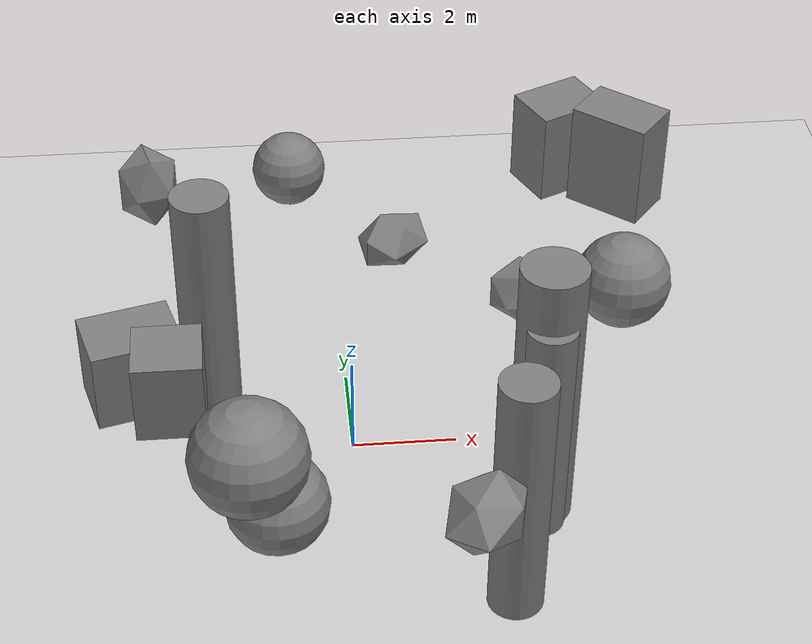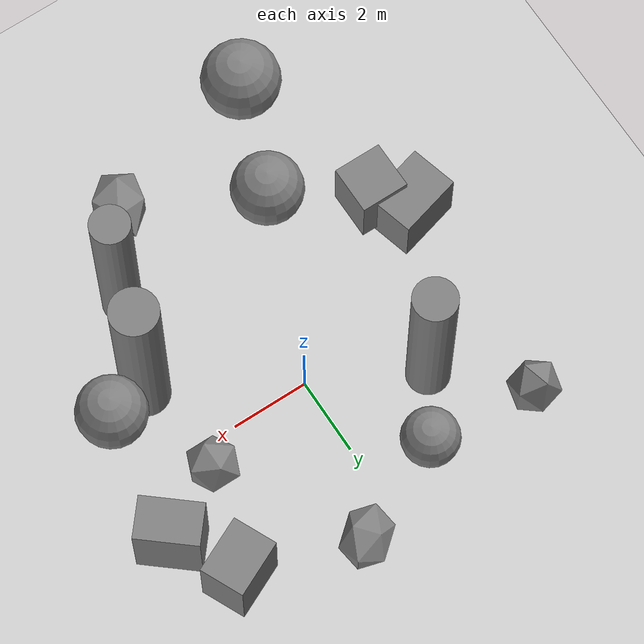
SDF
<?xml version="1.0"?>
<sdf version="1.6">
  <world name="uav6_knot_obstacles">
    <physics name="ode" type="ode">
      <max_step_size>0.001</max_step_size>
      <real_time_update_rate>1000</real_time_update_rate>
    </physics>
    <include>
      <uri>model://sun</uri>
    </include>
    <include>
      <uri>model://ground_plane</uri>
    </include>
    <model name="xgc2_obstacle_knotv2_cyl_01">
      <static>true</static>
      <pose relative_to="world">2.551648 -4.181376 2.5 0.0 0.0 0.0</pose>
      <link name="body">
        <collision name="collision">
          <geometry>
            <cylinder>
              <radius>0.5</radius>
              <length>5.0</length>
            </cylinder>
          </geometry>
        </collision>
        <visual name="visual">
          <geometry>
            <cylinder>
              <radius>0.5</radius>
              <length>5.0</length>
            </cylinder>
          </geometry>
          <material>
            <ambient>0.5 0.5 0.5 1</ambient>
            <diffuse>0.5 0.5 0.5 1</diffuse>
          </material>
        </visual>
      </link>
    </model>
    <model name="xgc2_obstacle_knotv2_sph_02">
      <static>true</static>
      <pose relative_to="world">4.788593 -0.604607 4.159518 0.0 0.0 0.0</pose>
      <link name="body">
        <collision name="collision">
          <geometry>
            <sphere>
              <radius>0.85</radius>
            </sphere>
          </geometry>
        </collision>
        <visual name="visual">
          <geometry>
            <sphere>
              <radius>0.85</radius>
            </sphere>
          </geometry>
          <material>
            <ambient>0.5 0.5 0.5 1</ambient>
            <diffuse>0.5 0.5 0.5 1</diffuse>
          </material>
        </visual>
      </link>
    </model>
    <model name="xgc2_obstacle_knotv2_box_03">
      <static>true</static>
      <pose relative_to="world">4.361661 4.038026 4.143696 0.0 0.0 0.43633306990197307</pose>
      <link name="body">
        <collision name="collision">
          <geometry>
            <box>
              <size>1.4 1.1 1.8</size>
            </box>
          </geometry>
        </collision>
        <visual name="visual">
          <geometry>
            <box>
              <size>1.4 1.1 1.8</size>
            </box>
          </geometry>
          <material>
            <ambient>0.5 0.5 0.5 1</ambient>
            <diffuse>0.5 0.5 0.5 1</diffuse>
          </material>
        </visual>
      </link>
    </model>
    <model name="xgc2_obstacle_knotv2_ico_04">
      <static>true</static>
      <pose relative_to="world">3.312296 1.241912 2.602638 0.0 0.0 0.0</pose>
      <link name="body">
        <collision name="collision">
          <geometry>
            <mesh>
              <uri>model://xgc2_convex_icosahedron_1/meshes/icosahedron_1.obj</uri>
              <scale>0.95 0.95 0.85</scale>
            </mesh>
          </geometry>
        </collision>
        <visual name="visual">
          <geometry>
            <mesh>
              <uri>model://xgc2_convex_icosahedron_1/meshes/icosahedron_1.obj</uri>
              <scale>0.95 0.95 0.85</scale>
            </mesh>
          </geometry>
          <material>
            <ambient>0.5 0.5 0.5 1</ambient>
            <diffuse>0.5 0.5 0.5 1</diffuse>
          </material>
        </visual>
      </link>
    </model>
    <model name="xgc2_obstacle_knotv2_ico_05">
      <static>true</static>
      <pose relative_to="world">1.152663 4.389347 1.616268 0.0 0.0 0.6981311720360319</pose>
      <link name="body">
        <collision name="collision">
          <geometry>
            <mesh>
              <uri>model://xgc2_convex_icosahedron_1/meshes/icosahedron_1.obj</uri>
              <scale>1.2 0.9 0.75</scale>
            </mesh>
          </geometry>
        </collision>
        <visual name="visual">
          <geometry>
            <mesh>
              <uri>model://xgc2_convex_icosahedron_1/meshes/icosahedron_1.obj</uri>
              <scale>1.2 0.9 0.75</scale>
            </mesh>
          </geometry>
          <material>
            <ambient>0.5 0.5 0.5 1</ambient>
            <diffuse>0.5 0.5 0.5 1</diffuse>
          </material>
        </visual>
      </link>
    </model>
    <model name="xgc2_obstacle_knotv2_cyl_06">
      <static>true</static>
      <pose relative_to="world">3.301213 -1.902357 2.75 0.0 0.0 0.0</pose>
      <link name="body">
        <collision name="collision">
          <geometry>
            <cylinder>
              <radius>0.6</radius>
              <length>5.5</length>
            </cylinder>
          </geometry>
        </collision>
        <visual name="visual">
          <geometry>
            <cylinder>
              <radius>0.6</radius>
              <length>5.5</length>
            </cylinder>
          </geometry>
          <material>
            <ambient>0.5 0.5 0.5 1</ambient>
            <diffuse>0.5 0.5 0.5 1</diffuse>
          </material>
        </visual>
      </link>
    </model>
    <model name="xgc2_obstacle_knotv2_box_07">
      <static>true</static>
      <pose relative_to="world">-3.231874 -2.086194 3.632785 0.0 0.0 0.0</pose>
      <link name="body">
        <collision name="collision">
          <geometry>
            <box>
              <size>1.2 1.2 1.5</size>
            </box>
          </geometry>
        </collision>
        <visual name="visual">
          <geometry>
            <box>
              <size>1.2 1.2 1.5</size>
            </box>
          </geometry>
          <material>
            <ambient>0.5 0.5 0.5 1</ambient>
            <diffuse>0.5 0.5 0.5 1</diffuse>
          </material>
        </visual>
      </link>
    </model>
    <model name="xgc2_obstacle_knotv2_sph_08">
      <static>true</static>
      <pose relative_to="world">-1.917458 -5.584984 5.041906 0.0 0.0 0.0</pose>
      <link name="body">
        <collision name="collision">
          <geometry>
            <sphere>
              <radius>0.95</radius>
            </sphere>
          </geometry>
        </collision>
        <visual name="visual">
          <geometry>
            <sphere>
              <radius>0.95</radius>
            </sphere>
          </geometry>
          <material>
            <ambient>0.5 0.5 0.5 1</ambient>
            <diffuse>0.5 0.5 0.5 1</diffuse>
          </material>
        </visual>
      </link>
    </model>
    <model name="xgc2_obstacle_knotv2_ico_09">
      <static>true</static>
      <pose relative_to="world">1.812886 -5.17351 3.168658 0.0 0.0 -0.5235985985475523</pose>
      <link name="body">
        <collision name="collision">
          <geometry>
            <mesh>
              <uri>model://xgc2_convex_icosahedron_1/meshes/icosahedron_1.obj</uri>
              <scale>1.0 1.3 0.85</scale>
            </mesh>
          </geometry>
        </collision>
        <visual name="visual">
          <geometry>
            <mesh>
              <uri>model://xgc2_convex_icosahedron_1/meshes/icosahedron_1.obj</uri>
              <scale>1.0 1.3 0.85</scale>
            </mesh>
          </geometry>
          <material>
            <ambient>0.5 0.5 0.5 1</ambient>
            <diffuse>0.5 0.5 0.5 1</diffuse>
          </material>
        </visual>
      </link>
    </model>
    <model name="xgc2_obstacle_knotv2_cyl_10">
      <static>true</static>
      <pose relative_to="world">3.26539 -2.266387 2.25 0.0 0.0 0.0</pose>
      <link name="body">
        <collision name="collision">
          <geometry>
            <cylinder>
              <radius>0.45</radius>
              <length>4.5</length>
            </cylinder>
          </geometry>
        </collision>
        <visual name="visual">
          <geometry>
            <cylinder>
              <radius>0.45</radius>
              <length>4.5</length>
            </cylinder>
          </geometry>
          <material>
            <ambient>0.5 0.5 0.5 1</ambient>
            <diffuse>0.5 0.5 0.5 1</diffuse>
          </material>
        </visual>
      </link>
    </model>
    <model name="xgc2_obstacle_knotv2_box_11">
      <static>true</static>
      <pose relative_to="world">5.260416 2.670945 4.600453 0.0 0.0 -0.6981311720360319</pose>
      <link name="body">
        <collision name="collision">
          <geometry>
            <box>
              <size>1.5 1.0 2.0</size>
            </box>
          </geometry>
        </collision>
        <visual name="visual">
          <geometry>
            <box>
              <size>1.5 1.0 2.0</size>
            </box>
          </geometry>
          <material>
            <ambient>0.5 0.5 0.5 1</ambient>
            <diffuse>0.5 0.5 0.5 1</diffuse>
          </material>
        </visual>
      </link>
    </model>
    <model name="xgc2_obstacle_knotv2_sph_12">
      <static>true</static>
      <pose relative_to="world">-0.936226 3.780745 3.902044 0.0 0.0 0.0</pose>
      <link name="body">
        <collision name="collision">
          <geometry>
            <sphere>
              <radius>0.7</radius>
            </sphere>
          </geometry>
        </collision>
        <visual name="visual">
          <geometry>
            <sphere>
              <radius>0.7</radius>
            </sphere>
          </geometry>
          <material>
            <ambient>0.5 0.5 0.5 1</ambient>
            <diffuse>0.5 0.5 0.5 1</diffuse>
          </material>
        </visual>
      </link>
    </model>
    <model name="xgc2_obstacle_knotv2_ico_13">
      <static>true</static>
      <pose relative_to="world">-3.680731 3.969044 3.537413 0.0 0.0 0.2617989704593342</pose>
      <link name="body">
        <collision name="collision">
          <geometry>
            <mesh>
              <uri>model://xgc2_convex_icosahedron_1/meshes/icosahedron_1.obj</uri>
              <scale>0.9 0.9 1.2</scale>
            </mesh>
          </geometry>
        </collision>
        <visual name="visual">
          <geometry>
            <mesh>
              <uri>model://xgc2_convex_icosahedron_1/meshes/icosahedron_1.obj</uri>
              <scale>0.9 0.9 1.2</scale>
            </mesh>
          </geometry>
          <material>
            <ambient>0.5 0.5 0.5 1</ambient>
            <diffuse>0.5 0.5 0.5 1</diffuse>
          </material>
        </visual>
      </link>
    </model>
    <model name="xgc2_obstacle_knotv2_cyl_14">
      <static>true</static>
      <pose relative_to="world">-2.630329 1.408727 2.5 0.0 0.0 0.0</pose>
      <link name="body">
        <collision name="collision">
          <geometry>
            <cylinder>
              <radius>0.55</radius>
              <length>5.0</length>
            </cylinder>
          </geometry>
        </collision>
        <visual name="visual">
          <geometry>
            <cylinder>
              <radius>0.55</radius>
              <length>5.0</length>
            </cylinder>
          </geometry>
          <material>
            <ambient>0.5 0.5 0.5 1</ambient>
            <diffuse>0.5 0.5 0.5 1</diffuse>
          </material>
        </visual>
      </link>
    </model>
    <model name="xgc2_obstacle_knotv2_box_15">
      <static>true</static>
      <pose relative_to="world">-3.878066 -1.363634 3.464468 0.0 0.0 0.2617989704593342</pose>
      <link name="body">
        <collision name="collision">
          <geometry>
            <box>
              <size>1.6 1.2 1.5</size>
            </box>
          </geometry>
        </collision>
        <visual name="visual">
          <geometry>
            <box>
              <size>1.6 1.2 1.5</size>
            </box>
          </geometry>
          <material>
            <ambient>0.5 0.5 0.5 1</ambient>
            <diffuse>0.5 0.5 0.5 1</diffuse>
          </material>
        </visual>
      </link>
    </model>
    <model name="xgc2_obstacle_knotv2_sph_16">
      <static>true</static>
      <pose relative_to="world">-1.512055 -3.903211 2.424586 0.0 0.0 0.0</pose>
      <link name="body">
        <collision name="collision">
          <geometry>
            <sphere>
              <radius>0.9</radius>
            </sphere>
          </geometry>
        </collision>
        <visual name="visual">
          <geometry>
            <sphere>
              <radius>0.9</radius>
            </sphere>
          </geometry>
          <material>
            <ambient>0.5 0.5 0.5 1</ambient>
            <diffuse>0.5 0.5 0.5 1</diffuse>
          </material>
        </visual>
      </link>
    </model>
  </world>
</sdf>
